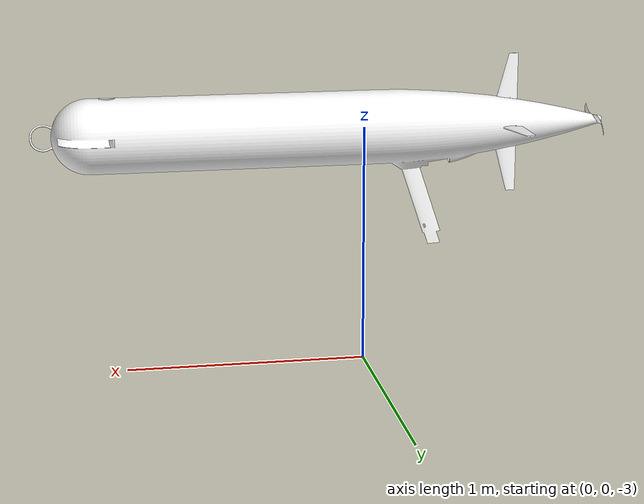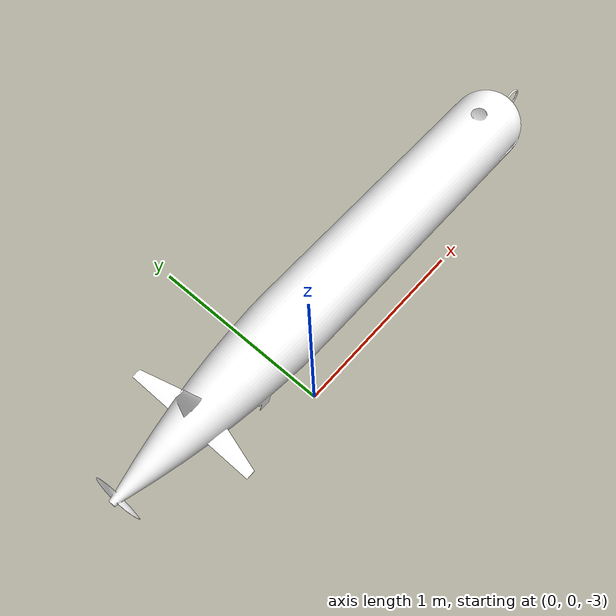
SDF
<?xml version="1.0" ?>
<sdf version="1.9">
  <world name="underwater_keyboard_control">
    <physics name="default_physics" default="true" type="ode">
      <max_step_size>0.01</max_step_size>
      <real_time_factor>1</real_time_factor>
      <real_time_update_rate>100</real_time_update_rate>
      <ode>
        <solver>
          <type>quick</type>
          <iters>50</iters>
          <sor>1.2</sor>
        </solver>
      </ode>
    </physics>

    <scene>
      <ambient>0.01 0.01 0.01 1.0</ambient>
      <background>0.0 0.7 0.8</background>
      <shadows>1</shadows>
      <sky>
        <clouds>
          <speed>12</speed>
        </clouds>
      </sky>
    </scene>

    <!-- Global light source -->
    <light type="directional" name="sun1">
      <pose>50 0 150 0 0 0</pose>
      <diffuse>1 1 1 1</diffuse>
      <specular>.1 .1 .1 1</specular>
      <direction>0.3 0.3 -1</direction>
      <cast_shadows>false</cast_shadows>
    </light>

    <!-- Global light source -->
    <light type="directional" name="sun_diffuse">
      <pose>-50 0 -150 0 0 0</pose>
      <diffuse>0.6 0.6 0.6 1</diffuse>
      <specular>0 0 0 1</specular>
      <direction>-0.3 -0.3 -1</direction>
      <cast_shadows>false</cast_shadows>
    </light>

    <!-- Add underwater environment -->
    <gravity>0 0 -9.8</gravity>

    <!-- Buoyancy system -->
    <plugin
      filename="gz-sim-buoyancy-system"
      name="gz::sim::systems::Buoyancy">
      <uniform_fluid_density>1000</uniform_fluid_density>
    </plugin>

    <plugin
      filename="gz-sim-fluid-drag-system"
      name="gz::sim::systems::AddedMass">
      <link_name>base_link</link_name>
      <param_file>/workspace/models/tethys/added_mass_params.yaml</param_file>
    </plugin>

    <plugin
      filename="gz-sim-physics-system"
      name="gz::sim::systems::Physics">
    </plugin>

    <!-- Model of Tethys with keyboard control -->
    <model name="tethys">
      <include>
        <uri>/home/baldik/gazebo_maritime/models/tethys_keyboard_control</uri>
      </include>
      <pose>0 0 -2 0 0 0</pose>
    </model>

    <gui fullscreen='0'>
      <plugin filename="GzScene3D" name="3D View">
        <gz-gui>
          <title>3D View</title>
          <property type="bool" key="showTitleBar">false</property>
          <property type="string" key="state">docked</property>
        </gz-gui>
        <engine>ogre2</engine>
        <scene>scene</scene>
        <ambient_light>0.4 0.4 0.4</ambient_light>
        <background_color>0.8 0.8 0.8</background_color>
        <camera_pose>5 -5 3 0 0.37 2.8</camera_pose>
      </plugin>
    </gui>
  </world>
</sdf>

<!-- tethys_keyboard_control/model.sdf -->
<sdf version="1.9">
  <model name="tethys">
    <include merge="true">
      <uri>/home/baldik/gazebo_maritime/models/tethys</uri>
    </include>

    <!-- Add damping to simulate underwater resistance -->
    <link name="base_link">
      <linear_damping>10.0</linear_damping>
      <angular_damping>5.0</angular_damping>
    </link>

    <!-- Thruster system -->
    <plugin
      filename="gz-sim-thruster-system"
      name="gz::sim::systems::Thruster">
      <namespace>tethys</namespace>
      <use_angvel_cmd>0</use_angvel_cmd>
      <joint_name>propeller_joint</joint_name>
      <thrust_coefficient>0.004422</thrust_coefficient>
      <fluid_density>1000</fluid_density>
      <propeller_diameter>0.2</propeller_diameter>
    </plugin>

    <!-- Joint position controllers for fins -->
    <plugin
      filename="gz-sim-joint-position-controller-system"
      name="gz::sim::systems::JointPositionController">
      <joint_name>horizontal_fins_joint</joint_name>
      <p_gain>0.1</p_gain>
    </plugin>

    <plugin
      filename="gz-sim-joint-position-controller-system"
      name="gz::sim::systems::JointPositionController">
      <joint_name>vertical_fins_joint</joint_name>
      <p_gain>0.1</p_gain>
    </plugin>

    <!-- Command velocity subscriber -->
    <plugin
      filename="gz-sim-velocity-control-system"
      name="gz::sim::systems::VelocityControl">
      <topic>/model/tethys/cmd_vel</topic>
      <type>velocity</type>
    </plugin>
  </model>
</sdf>

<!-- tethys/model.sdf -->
<sdf version="1.6">
  <model name="tethys">
    <!-- Body -->
    <link name="base_link">
      <inertial>
        <mass>147.8671</mass>
        <inertia>
          <ixx>3.000000</ixx>
          <ixy>0</ixy>
          <ixz>0</ixz>
          <iyy>41.980233</iyy>
          <iyz>0</iyz>
          <izz>41.980233</izz>
        </inertia>
      </inertial>

      <collision name="main_body_buoyancy">
        <pose>0 0 0 0 0 0</pose>
        <geometry>
          <box>
            <size>2 0.3 0.246445166667</size>
          </box>
        </geometry>
      </collision>

      <visual name="visual">
        <geometry>
          <mesh>
            <uri>meshes/tethys.dae</uri>
            <submesh>
              <name>Body</name>
              <center>false</center>
            </submesh>
          </mesh>
        </geometry>
        <material>
          <diffuse>1.0 1.0 1.0</diffuse>
          <specular>1.0 1.0 1.0</specular>
          <pbr>
            <metal>
              <albedo_map>materials/textures/Tethys_Albedo.png</albedo_map>
              <normal_map>materials/textures/Tethys_Normal.png</normal_map>
              <metalness_map>materials/textures/Tethys_Metalness.png</metalness_map>
              <roughness_map>materials/textures/Tethys_Roughness.png</roughness_map>
            </metal>
          </pbr>
          <script>
            <uri>materials/scripts/</uri>
            <uri>materials/textures/</uri>
            <name>tethys/Tethys_Diffuse</name>
          </script>
        </material>
      </visual>
    </link>

    <!-- Horizontal fins -->
    <link name="horizontal_fins">
      <pose>1.05 0 0 0 0 0</pose>
      <inertial>
        <pose>0 0 0 1.57 0 0.5</pose>
        <mass>0.2</mass>
        <inertia>
          <ixx>0.0007924568755</ixx>
          <ixy>-0.0000000002674</ixy>
          <ixz>0.0003978158176</ixz>
          <iyy>0.0010546736475</iyy>
          <iyz>-0.0000000006729</iyz>
          <izz>0.0002633558262</izz>
        </inertia>
      </inertial>

      <collision name="collision">
        <geometry>
          <box>
            <size>0.1 0.1 0.02</size>
          </box>
        </geometry>
      </collision>

      <visual name= "visual">
        <pose>-1.05 0 0 0 0 0</pose>
        <geometry>
          <mesh>
            <uri>meshes/tethys.dae</uri>
            <submesh>
              <name>Fins_Horizontal</name>
              <center>false</center>
            </submesh>
          </mesh>
        </geometry>
        <material>
          <ambient>1 0 0 1</ambient>
          <diffuse>1 0 0 1</diffuse>
          <specular>1 0 0 1</specular>
        </material>
      </visual>
    </link>

    <!-- Vertical fins -->
    <link name="vertical_fins">
      <pose>1.05 0 0 0 0 0</pose>
      <inertial>
        <mass>0.2</mass>
        <inertia>
          <ixx>0.0007924568755</ixx>
          <ixy>-0.0000000002674</ixy>
          <ixz>0.0003978158176</ixz>
          <iyy>0.0010546736475</iyy>
          <iyz>-0.0000000006729</iyz>
          <izz>0.0002633558262</izz>
        </inertia>
      </inertial>

      <collision name="collision">
         <geometry>
          <box>
            <size>0.1 0.1 0.02</size>
          </box>
        </geometry>
      </collision>

      <visual name= "visual">
        <pose>-1.05 0 0 0 0 0</pose>
        <geometry>
          <mesh>
            <uri>meshes/tethys.dae</uri>
            <submesh>
              <name>Fins_vertical</name>
              <center>false</center>
            </submesh>
          </mesh>
        </geometry>
        <material>
          <ambient>1 0 0 1</ambient>
          <diffuse>1 0 0 1</diffuse>
          <specular>1 0 0 1</specular>
        </material>
      </visual>
    </link>

    <!-- Propeller -->
    <link name="propeller">
      <pose>1.43162 0 0 0 0 0</pose>
      <inertial>
        <pose>0 0 0 0 0 0</pose>
        <mass>0.09</mass>
        <inertia>
          <ixx>0.000143971303</ixx>
          <ixy>0.000000000008</ixy>
          <ixz>-0.000000000224</ixz>
          <iyy>0.000140915448</iyy>
          <iyz>-0.000025236433</iyz>
          <izz>0.000033571862</izz>
        </inertia>
      </inertial>

      <collision name="collision">
        <geometry>
          <box>
            <size>0.03 0.1 0.03</size>
          </box>
        </geometry>
      </collision>

      <visual name= "visual">
        <pose>-1.43162 0 0 0 0 0</pose>
        <geometry>
          <mesh>
            <uri>meshes/tethys.dae</uri>
            <submesh>
              <name>Prop</name>
              <center>false</center>
            </submesh>
          </mesh>
        </geometry>
        <material>
          <ambient>0 0 0 1</ambient>
          <diffuse>0 0 0 1</diffuse>
          <specular>0 0 0 1</specular>
        </material>
      </visual>

    </link>

    <!-- Joints -->
    <joint name="horizontal_fins_joint" type="revolute">
      <pose>0 0 0 0 0 0</pose>
      <parent>base_link</parent>
      <child>horizontal_fins</child>
      <axis>
        <xyz>0 1 0</xyz>
        <limit>
          <lower>-0.261799</lower>
          <upper>0.261799</upper>
          <effort>-1</effort>
          <velocity>-1</velocity>
        </limit>
      </axis>
    </joint>

    <joint name="vertical_fins_joint" type="revolute">
      <pose>0 0 0 0 0 0</pose>
      <parent>base_link</parent>
      <child>vertical_fins</child>
      <axis>
        <xyz>0 0 1</xyz>
        <limit>
          <lower>-0.261799</lower>
          <upper>0.261799</upper>
          <effort>-1</effort>
          <velocity>-1</velocity>
        </limit>
      </axis>
    </joint>

    <joint name="propeller_joint" type="revolute">
      <pose>0 0 0 0 0 0</pose>
      <parent>base_link</parent>
      <child>propeller</child>
      <axis>
        <xyz>1 0 0</xyz>
        <limit>
          <lower>-1e+12</lower>
          <upper>1e+12</upper>
          <effort>-1</effort>
          <velocity>-1</velocity>
        </limit>
      </axis>
    </joint>
  </model>
</sdf>
